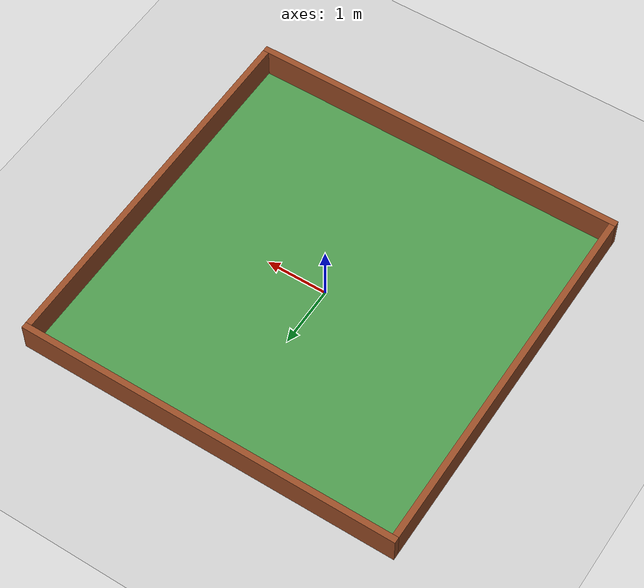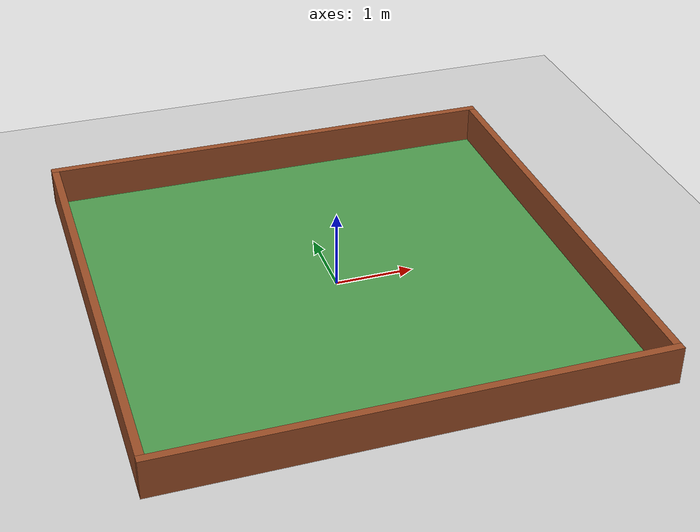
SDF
<?xml version="1.0" ?>
<sdf version="1.9">
  <world name="bounded_arena">

    <physics name="1ms" type="ignored">
      <max_step_size>0.001</max_step_size>
      <real_time_factor>1.0</real_time_factor>
    </physics>

    <plugin filename="gz-sim-physics-system" name="gz::sim::systems::Physics"/>
    <plugin filename="gz-sim-user-commands-system" name="gz::sim::systems::UserCommands"/>
    <plugin filename="gz-sim-scene-broadcaster-system" name="gz::sim::systems::SceneBroadcaster"/>

    <light type="directional" name="sun">
      <cast_shadows>true</cast_shadows>
      <pose>0 0 10 0 0 0</pose>
      <diffuse>0.8 0.8 0.8 1</diffuse>
      <specular>0.2 0.2 0.2 1</specular>
      <direction>-0.5 0.1 -0.9</direction>
    </light>

    <!-- Ground plane -->
    <model name="ground_plane">
      <static>true</static>
      <link name="link">
        <collision name="collision">
          <geometry>
            <plane>
              <normal>0 0 1</normal>
              <size>100 100</size>
            </plane>
          </geometry>
        </collision>
        <visual name="visual">
          <geometry>
            <plane>
              <normal>0 0 1</normal>
              <size>100 100</size>
            </plane>
          </geometry>
          <material>
            <ambient>0.8 0.8 0.8 1</ambient>
            <diffuse>0.8 0.8 0.8 1</diffuse>
          </material>
        </visual>
      </link>
    </model>

    <!-- Arena floor marker (6x6m green area) -->
    <model name="arena_floor">
      <static>true</static>
      <pose>0 0 0.005 0 0 0</pose>
      <link name="link">
        <visual name="visual">
          <geometry>
            <box>
              <size>6 6 0.01</size>
            </box>
          </geometry>
          <material>
            <ambient>0.2 0.5 0.2 1</ambient>
            <diffuse>0.3 0.6 0.3 1</diffuse>
          </material>
        </visual>
      </link>
    </model>

    <!-- North wall -->
    <model name="wall_north">
      <static>true</static>
      <pose>0 3.05 0.25 0 0 0</pose>
      <link name="link">
        <collision name="collision">
          <geometry><box><size>6.2 0.1 0.5</size></box></geometry>
        </collision>
        <visual name="visual">
          <geometry><box><size>6.2 0.1 0.5</size></box></geometry>
          <material>
            <ambient>0.5 0.25 0.1 1</ambient>
            <diffuse>0.6 0.3 0.15 1</diffuse>
          </material>
        </visual>
      </link>
    </model>

    <!-- South wall -->
    <model name="wall_south">
      <static>true</static>
      <pose>0 -3.05 0.25 0 0 0</pose>
      <link name="link">
        <collision name="collision">
          <geometry><box><size>6.2 0.1 0.5</size></box></geometry>
        </collision>
        <visual name="visual">
          <geometry><box><size>6.2 0.1 0.5</size></box></geometry>
          <material>
            <ambient>0.5 0.25 0.1 1</ambient>
            <diffuse>0.6 0.3 0.15 1</diffuse>
          </material>
        </visual>
      </link>
    </model>

    <!-- East wall -->
    <model name="wall_east">
      <static>true</static>
      <pose>3.05 0 0.25 0 0 0</pose>
      <link name="link">
        <collision name="collision">
          <geometry><box><size>0.1 6.0 0.5</size></box></geometry>
        </collision>
        <visual name="visual">
          <geometry><box><size>0.1 6.0 0.5</size></box></geometry>
          <material>
            <ambient>0.5 0.25 0.1 1</ambient>
            <diffuse>0.6 0.3 0.15 1</diffuse>
          </material>
        </visual>
      </link>
    </model>

    <!-- West wall -->
    <model name="wall_west">
      <static>true</static>
      <pose>-3.05 0 0.25 0 0 0</pose>
      <link name="link">
        <collision name="collision">
          <geometry><box><size>0.1 6.0 0.5</size></box></geometry>
        </collision>
        <visual name="visual">
          <geometry><box><size>0.1 6.0 0.5</size></box></geometry>
          <material>
            <ambient>0.5 0.25 0.1 1</ambient>
            <diffuse>0.6 0.3 0.15 1</diffuse>
          </material>
        </visual>
      </link>
    </model>

  </world>
</sdf>
